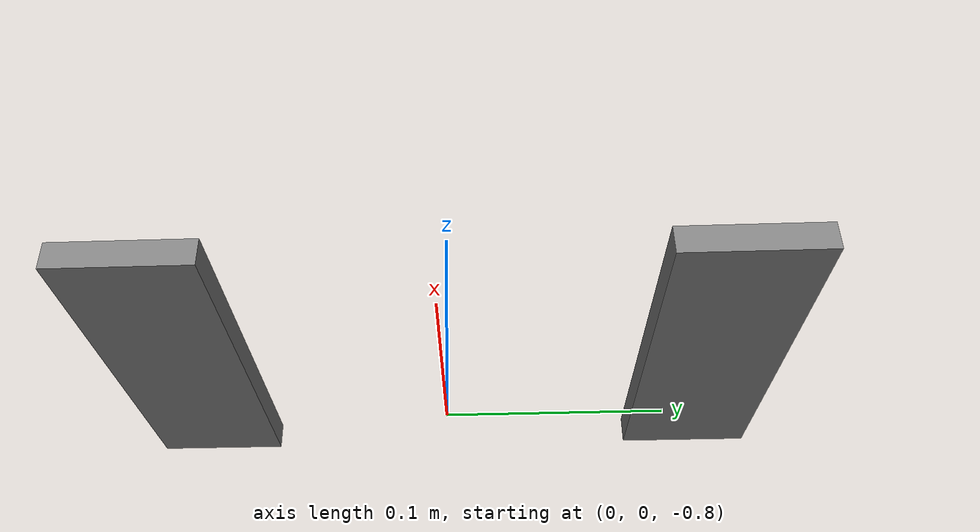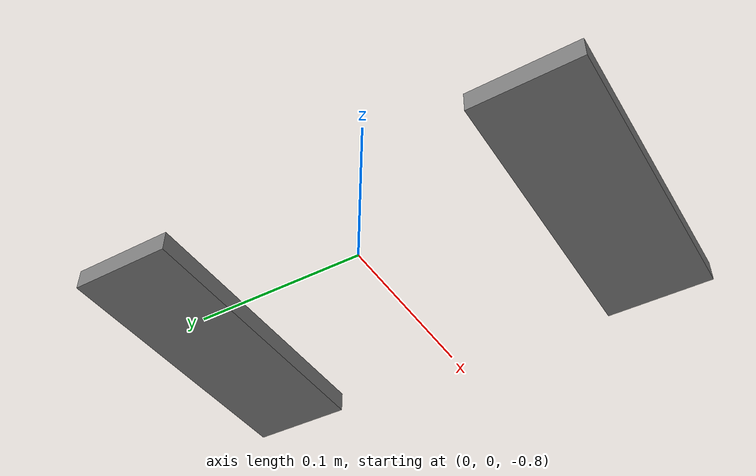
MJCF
<mujoco model="g1_23dof_omnisim">
  <compiler angle="radian"/>

  <option timestep="0.004"/>

  <worldbody>
    <geom name="ground" size="50 50 0.1" type="plane" conaffinity="2"/>
    <body name="pelvis">
      <inertial pos="0 0 -0.07605" quat="1 0 -0.000399148 0" mass="3.813" diaginertia="0.010549 0.0093089 0.0079184"/>
      <joint name="root_free" type="free"/>
      <body name="pelvis_contour_link">
        <inertial pos="0 0 0" mass="0.001" diaginertia="1e-07 1e-07 1e-07"/>
      </body>
      <body name="left_hip_pitch_link" pos="0 0.064452 -0.1027">
        <inertial pos="0.002741 0.047791 -0.02606" quat="0.954862 0.293964 0.0302556 0.030122" mass="1.35" diaginertia="0.00181517 0.00153422 0.00116212"/>
        <joint name="left_hip_pitch_joint" pos="0 0 0" axis="0 1 0" limited="true" range="-2.5307 2.8798" actuatorfrcrange="-88 88"/>
        <body name="left_hip_roll_link" pos="0 0.052 -0.030465" quat="0.996179 0 -0.0873386 0">
          <inertial pos="0.029812 -0.001045 -0.087934" quat="0.977808 -1.97119e-05 0.205576 -0.0403793" mass="1.52" diaginertia="0.00254986 0.00241169 0.00148755"/>
          <joint name="left_hip_roll_joint" pos="0 0 0" axis="1 0 0" limited="true" range="-0.5236 2.9671" actuatorfrcrange="-88 88"/>
          <body name="left_hip_yaw_link" pos="0.025001 0 -0.12412">
            <inertial pos="-0.057709 -0.010981 -0.15078" quat="0.600598 0.15832 0.223482 0.751181" mass="1.702" diaginertia="0.00776166 0.00717575 0.00160139"/>
            <joint name="left_hip_yaw_joint" pos="0 0 0" axis="0 0 1" limited="true" range="-2.7576 2.7576" actuatorfrcrange="-88 88"/>
            <body name="left_knee_link" pos="-0.078273 0.0021489 -0.17734" quat="0.996179 0 0.0873386 0">
              <inertial pos="0.005457 0.003964 -0.12074" quat="0.923418 -0.0327699 0.0158246 0.382067" mass="1.932" diaginertia="0.0113804 0.0112778 0.00146458"/>
              <joint name="left_knee_joint" pos="0 0 0" axis="0 1 0" limited="true" range="-0.087267 2.8798" actuatorfrcrange="-139 139"/>
              <body name="left_ankle_pitch_link" pos="0 -9.4445e-05 -0.30001">
                <inertial pos="-0.007269 0 0.011137" quat="0.603053 0.369225 0.369225 0.603053" mass="0.074" diaginertia="1.89e-05 1.40805e-05 6.9195e-06"/>
                <joint name="left_ankle_pitch_joint" pos="0 0 0" axis="0 1 0" limited="true" range="-0.87267 0.5236" actuatorfrcrange="-35 35"/>
                <body name="left_ankle_roll_link" pos="0 0 -0.017558">
                  <inertial pos="0.026505 0 -0.016425" quat="-0.000481092 0.728482 -0.000618967 0.685065" mass="0.608" diaginertia="0.00167218 0.0016161 0.000217621"/>
                  <joint name="left_ankle_roll_joint" pos="0 0 0" axis="1 0 0" limited="true" range="-0.2618 0.2618" actuatorfrcrange="-35 35"/>
                  <geom size="0.085 0.03 0.006" pos="0.035 0 -0.03" type="box" contype="2"/>
                </body>
              </body>
            </body>
          </body>
        </body>
      </body>
      <body name="right_hip_pitch_link" pos="0 -0.064452 -0.1027">
        <inertial pos="0.002741 -0.047791 -0.02606" quat="0.954862 -0.293964 0.0302556 -0.030122" mass="1.35" diaginertia="0.00181517 0.00153422 0.00116212"/>
        <joint name="right_hip_pitch_joint" pos="0 0 0" axis="0 1 0" limited="true" range="-2.5307 2.8798" actuatorfrcrange="-88 88"/>
        <body name="right_hip_roll_link" pos="0 -0.052 -0.030465" quat="0.996179 0 -0.0873386 0">
          <inertial pos="0.029812 0.001045 -0.087934" quat="0.977808 1.97119e-05 0.205576 0.0403793" mass="1.52" diaginertia="0.00254986 0.00241169 0.00148755"/>
          <joint name="right_hip_roll_joint" pos="0 0 0" axis="1 0 0" limited="true" range="-2.9671 0.5236" actuatorfrcrange="-88 88"/>
          <body name="right_hip_yaw_link" pos="0.025001 0 -0.12412">
            <inertial pos="-0.057709 0.010981 -0.15078" quat="0.751181 0.223482 0.15832 0.600598" mass="1.702" diaginertia="0.00776166 0.00717575 0.00160139"/>
            <joint name="right_hip_yaw_joint" pos="0 0 0" axis="0 0 1" limited="true" range="-2.7576 2.7576" actuatorfrcrange="-88 88"/>
            <body name="right_knee_link" pos="-0.078273 -0.0021489 -0.17734" quat="0.996179 0 0.0873386 0">
              <inertial pos="0.005457 -0.003964 -0.12074" quat="0.923439 0.0345276 0.0116333 -0.382012" mass="1.932" diaginertia="0.011374 0.0112843 0.00146452"/>
              <joint name="right_knee_joint" pos="0 0 0" axis="0 1 0" limited="true" range="-0.087267 2.8798" actuatorfrcrange="-139 139"/>
              <body name="right_ankle_pitch_link" pos="0 9.4445e-05 -0.30001">
                <inertial pos="-0.007269 0 0.011137" quat="0.603053 0.369225 0.369225 0.603053" mass="0.074" diaginertia="1.89e-05 1.40805e-05 6.9195e-06"/>
                <joint name="right_ankle_pitch_joint" pos="0 0 0" axis="0 1 0" limited="true" range="-0.87267 0.5236" actuatorfrcrange="-35 35"/>
                <body name="right_ankle_roll_link" pos="0 0 -0.017558">
                  <inertial pos="0.026505 0 -0.016425" quat="0.000481092 0.728482 0.000618967 0.685065" mass="0.608" diaginertia="0.00167218 0.0016161 0.000217621"/>
                  <joint name="right_ankle_roll_joint" pos="0 0 0" axis="1 0 0" limited="true" range="-0.2618 0.2618" actuatorfrcrange="-35 35"/>
                  <geom size="0.085 0.03 0.006" pos="0.035 0 -0.03" type="box" contype="2"/>
                </body>
              </body>
            </body>
          </body>
        </body>
      </body>
      <body name="torso_link" pos="-0.0039635 0 0.054">
        <inertial pos="0.002601 0.000257 0.153719" quat="0.999683 0.00171655 0.0248299 -0.00373138" mass="8.562" diaginertia="0.065762 0.0535348 0.0307215"/>
        <joint name="waist_yaw_joint" pos="0 0 0" axis="0 0 1" limited="true" range="-2.618 2.618" actuatorfrcrange="-88 88"/>
        <body name="waist_yaw_fixed_link" pos="0.0039635 0 -0.054">
          <inertial pos="0.003964 0 0.018769" quat="-0.0178291 0.628464 0.0282471 0.777121" mass="0.244" diaginertia="0.000158561 0.000124229 9.67669e-05"/>
        </body>
        <body name="logo_link" pos="0.0039635 0 -0.054">
          <inertial pos="0 0 0" mass="0.001" diaginertia="1e-07 1e-07 1e-07"/>
        </body>
        <body name="head_link" pos="0.0039635 0 -0.054">
          <inertial pos="0.005267 0.000299 0.449869" quat="0.698214 0.0103452 0.0112083 0.715727" mass="1.036" diaginertia="0.00418528 0.00408711 0.00180579"/>
        </body>
        <body name="waist_support_link" pos="0.0039635 0 -0.054">
          <inertial pos="0 0 0" mass="0.001" diaginertia="1e-07 1e-07 1e-07"/>
        </body>
        <body name="imu_in_torso" pos="-0.03959 -0.00224 0.13792"/>
        <body name="d435_link" pos="0.0576235 0.01753 0.41987" quat="0.91496 0 0.403545 0"/>
        <body name="mid360_link" pos="0.0002835 3e-05 0.40618" quat="0.999799 0 0.0200699 0"/>
        <body name="left_shoulder_pitch_link" pos="0.0039563 0.10022 0.23778" quat="0.990264 0.139201 1.38722e-05 -9.86868e-05">
          <inertial pos="0 0.035892 -0.011628" quat="0.654152 0.0130458 -0.326267 0.68225" mass="0.718" diaginertia="0.000465864 0.000432842 0.000406394"/>
          <joint name="left_shoulder_pitch_joint" pos="0 0 0" axis="0 1 0" limited="true" range="-3.0892 2.6704" actuatorfrcrange="-25 25"/>
          <body name="left_shoulder_roll_link" pos="0 0.038 -0.013831" quat="0.990268 -0.139172 0 0">
            <inertial pos="-0.000227 0.00727 -0.063243" quat="0.701256 -0.0196223 -0.00710317 0.712604" mass="0.643" diaginertia="0.000691311 0.000618011 0.000388977"/>
            <joint name="left_shoulder_roll_joint" pos="0 0 0" axis="1 0 0" limited="true" range="-1.5882 2.2515" actuatorfrcrange="-25 25"/>
            <body name="left_shoulder_yaw_link" pos="0 0.00624 -0.1032">
              <inertial pos="0.010773 -0.002949 -0.072009" quat="0.716879 -0.0964829 -0.0679942 0.687134" mass="0.734" diaginertia="0.00106187 0.00103217 0.000400661"/>
              <joint name="left_shoulder_yaw_joint" pos="0 0 0" axis="0 0 1" limited="true" range="-2.618 2.618" actuatorfrcrange="-25 25"/>
              <body name="left_elbow_link" pos="0.015783 0 -0.080518">
                <inertial pos="0.064956 0.004454 -0.010062" quat="0.541765 0.636132 0.388821 0.388129" mass="0.6" diaginertia="0.000443035 0.000421612 0.000259353"/>
                <joint name="left_elbow_joint" pos="0 0 0" axis="0 1 0" limited="true" range="-1.0472 2.0944" actuatorfrcrange="-25 25"/>
                <body name="left_wrist_roll_rubber_hand" pos="0.1 0.00188791 -0.01">
                  <inertial pos="0.107947 0.00163512 0.00202245" quat="0.494051 0.504265 0.48416 0.516933" mass="0.356929" diaginertia="0.00200292 0.0019426 0.000195232"/>
                  <joint name="left_wrist_roll_joint" pos="0 0 0" axis="1 0 0" limited="true" range="-1.97222 1.97222" actuatorfrcrange="-25 25"/>
                </body>
              </body>
            </body>
          </body>
        </body>
        <body name="right_shoulder_pitch_link" pos="0.0039563 -0.10021 0.23778" quat="0.990264 -0.139201 1.38722e-05 9.86868e-05">
          <inertial pos="0 -0.035892 -0.011628" quat="0.68225 -0.326267 0.0130458 0.654152" mass="0.718" diaginertia="0.000465864 0.000432842 0.000406394"/>
          <joint name="right_shoulder_pitch_joint" pos="0 0 0" axis="0 1 0" limited="true" range="-3.0892 2.6704" actuatorfrcrange="-25 25"/>
          <body name="right_shoulder_roll_link" pos="0 -0.038 -0.013831" quat="0.990268 0.139172 0 0">
            <inertial pos="-0.000227 -0.00727 -0.063243" quat="0.712604 -0.00710317 -0.0196223 0.701256" mass="0.643" diaginertia="0.000691311 0.000618011 0.000388977"/>
            <joint name="right_shoulder_roll_joint" pos="0 0 0" axis="1 0 0" limited="true" range="-2.2515 1.5882" actuatorfrcrange="-25 25"/>
            <body name="right_shoulder_yaw_link" pos="0 -0.00624 -0.1032">
              <inertial pos="0.010773 0.002949 -0.072009" quat="0.687134 -0.0679942 -0.0964829 0.716879" mass="0.734" diaginertia="0.00106187 0.00103217 0.000400661"/>
              <joint name="right_shoulder_yaw_joint" pos="0 0 0" axis="0 0 1" limited="true" range="-2.618 2.618" actuatorfrcrange="-25 25"/>
              <body name="right_elbow_link" pos="0.015783 0 -0.080518">
                <inertial pos="0.064956 -0.004454 -0.010062" quat="0.388129 0.388821 0.636132 0.541765" mass="0.6" diaginertia="0.000443035 0.000421612 0.000259353"/>
                <joint name="right_elbow_joint" pos="0 0 0" axis="0 1 0" limited="true" range="-1.0472 2.0944" actuatorfrcrange="-25 25"/>
                <body name="right_wrist_roll_rubber_hand" pos="0.1 -0.00188791 -0.01">
                  <inertial pos="0.107947 -0.00163512 0.00202245" quat="0.516933 0.48416 0.504265 0.494051" mass="0.356929" diaginertia="0.00200292 0.0019426 0.000195232"/>
                  <joint name="right_wrist_roll_joint" pos="0 0 0" axis="1 0 0" limited="true" range="-1.97222 1.97222" actuatorfrcrange="-25 25"/>
                </body>
              </body>
            </body>
          </body>
        </body>
      </body>
      <body name="imu_in_pelvis" pos="0.04525 0 -0.08339"/>
    </body>
  </worldbody>

  <actuator>
    <general name="left_hip_pitch_joint_pos" joint="left_hip_pitch_joint" ctrllimited="false" forcelimited="false" biastype="affine" gainprm="100" biasprm="0 -100"/>
    <general name="left_hip_pitch_joint_vel" joint="left_hip_pitch_joint" ctrllimited="false" forcelimited="false" biastype="affine" gainprm="5" biasprm="0 0 -5"/>
    <general name="left_hip_roll_joint_pos" joint="left_hip_roll_joint" ctrllimited="false" forcelimited="false" biastype="affine" gainprm="100" biasprm="0 -100"/>
    <general name="left_hip_roll_joint_vel" joint="left_hip_roll_joint" ctrllimited="false" forcelimited="false" biastype="affine" gainprm="5" biasprm="0 0 -5"/>
    <general name="left_hip_yaw_joint_pos" joint="left_hip_yaw_joint" ctrllimited="false" forcelimited="false" biastype="affine" gainprm="100" biasprm="0 -100"/>
    <general name="left_hip_yaw_joint_vel" joint="left_hip_yaw_joint" ctrllimited="false" forcelimited="false" biastype="affine" gainprm="5" biasprm="0 0 -5"/>
    <general name="left_knee_joint_pos" joint="left_knee_joint" ctrllimited="false" forcelimited="false" biastype="affine" gainprm="100" biasprm="0 -100"/>
    <general name="left_knee_joint_vel" joint="left_knee_joint" ctrllimited="false" forcelimited="false" biastype="affine" gainprm="5" biasprm="0 0 -5"/>
    <general name="left_ankle_pitch_joint_pos" joint="left_ankle_pitch_joint" ctrllimited="false" forcelimited="false" biastype="affine" gainprm="100" biasprm="0 -100"/>
    <general name="left_ankle_pitch_joint_vel" joint="left_ankle_pitch_joint" ctrllimited="false" forcelimited="false" biastype="affine" gainprm="5" biasprm="0 0 -5"/>
    <general name="left_ankle_roll_joint_pos" joint="left_ankle_roll_joint" ctrllimited="false" forcelimited="false" biastype="affine" gainprm="100" biasprm="0 -100"/>
    <general name="left_ankle_roll_joint_vel" joint="left_ankle_roll_joint" ctrllimited="false" forcelimited="false" biastype="affine" gainprm="5" biasprm="0 0 -5"/>
    <general name="right_hip_pitch_joint_pos" joint="right_hip_pitch_joint" ctrllimited="false" forcelimited="false" biastype="affine" gainprm="100" biasprm="0 -100"/>
    <general name="right_hip_pitch_joint_vel" joint="right_hip_pitch_joint" ctrllimited="false" forcelimited="false" biastype="affine" gainprm="5" biasprm="0 0 -5"/>
    <general name="right_hip_roll_joint_pos" joint="right_hip_roll_joint" ctrllimited="false" forcelimited="false" biastype="affine" gainprm="100" biasprm="0 -100"/>
    <general name="right_hip_roll_joint_vel" joint="right_hip_roll_joint" ctrllimited="false" forcelimited="false" biastype="affine" gainprm="5" biasprm="0 0 -5"/>
    <general name="right_hip_yaw_joint_pos" joint="right_hip_yaw_joint" ctrllimited="false" forcelimited="false" biastype="affine" gainprm="100" biasprm="0 -100"/>
    <general name="right_hip_yaw_joint_vel" joint="right_hip_yaw_joint" ctrllimited="false" forcelimited="false" biastype="affine" gainprm="5" biasprm="0 0 -5"/>
    <general name="right_knee_joint_pos" joint="right_knee_joint" ctrllimited="false" forcelimited="false" biastype="affine" gainprm="100" biasprm="0 -100"/>
    <general name="right_knee_joint_vel" joint="right_knee_joint" ctrllimited="false" forcelimited="false" biastype="affine" gainprm="5" biasprm="0 0 -5"/>
    <general name="right_ankle_pitch_joint_pos" joint="right_ankle_pitch_joint" ctrllimited="false" forcelimited="false" biastype="affine" gainprm="100" biasprm="0 -100"/>
    <general name="right_ankle_pitch_joint_vel" joint="right_ankle_pitch_joint" ctrllimited="false" forcelimited="false" biastype="affine" gainprm="5" biasprm="0 0 -5"/>
    <general name="right_ankle_roll_joint_pos" joint="right_ankle_roll_joint" ctrllimited="false" forcelimited="false" biastype="affine" gainprm="100" biasprm="0 -100"/>
    <general name="right_ankle_roll_joint_vel" joint="right_ankle_roll_joint" ctrllimited="false" forcelimited="false" biastype="affine" gainprm="5" biasprm="0 0 -5"/>
    <general name="waist_yaw_joint_pos" joint="waist_yaw_joint" ctrllimited="false" forcelimited="false" biastype="affine" gainprm="100" biasprm="0 -100"/>
    <general name="waist_yaw_joint_vel" joint="waist_yaw_joint" ctrllimited="false" forcelimited="false" biastype="affine" gainprm="5" biasprm="0 0 -5"/>
    <general name="left_shoulder_pitch_joint_pos" joint="left_shoulder_pitch_joint" ctrllimited="false" forcelimited="false" biastype="affine" gainprm="100" biasprm="0 -100"/>
    <general name="left_shoulder_pitch_joint_vel" joint="left_shoulder_pitch_joint" ctrllimited="false" forcelimited="false" biastype="affine" gainprm="5" biasprm="0 0 -5"/>
    <general name="left_shoulder_roll_joint_pos" joint="left_shoulder_roll_joint" ctrllimited="false" forcelimited="false" biastype="affine" gainprm="100" biasprm="0 -100"/>
    <general name="left_shoulder_roll_joint_vel" joint="left_shoulder_roll_joint" ctrllimited="false" forcelimited="false" biastype="affine" gainprm="5" biasprm="0 0 -5"/>
    <general name="left_shoulder_yaw_joint_pos" joint="left_shoulder_yaw_joint" ctrllimited="false" forcelimited="false" biastype="affine" gainprm="100" biasprm="0 -100"/>
    <general name="left_shoulder_yaw_joint_vel" joint="left_shoulder_yaw_joint" ctrllimited="false" forcelimited="false" biastype="affine" gainprm="5" biasprm="0 0 -5"/>
    <general name="left_elbow_joint_pos" joint="left_elbow_joint" ctrllimited="false" forcelimited="false" biastype="affine" gainprm="100" biasprm="0 -100"/>
    <general name="left_elbow_joint_vel" joint="left_elbow_joint" ctrllimited="false" forcelimited="false" biastype="affine" gainprm="5" biasprm="0 0 -5"/>
    <general name="left_wrist_roll_joint_pos" joint="left_wrist_roll_joint" ctrllimited="false" forcelimited="false" biastype="affine" gainprm="100" biasprm="0 -100"/>
    <general name="left_wrist_roll_joint_vel" joint="left_wrist_roll_joint" ctrllimited="false" forcelimited="false" biastype="affine" gainprm="5" biasprm="0 0 -5"/>
    <general name="right_shoulder_pitch_joint_pos" joint="right_shoulder_pitch_joint" ctrllimited="false" forcelimited="false" biastype="affine" gainprm="100" biasprm="0 -100"/>
    <general name="right_shoulder_pitch_joint_vel" joint="right_shoulder_pitch_joint" ctrllimited="false" forcelimited="false" biastype="affine" gainprm="5" biasprm="0 0 -5"/>
    <general name="right_shoulder_roll_joint_pos" joint="right_shoulder_roll_joint" ctrllimited="false" forcelimited="false" biastype="affine" gainprm="100" biasprm="0 -100"/>
    <general name="right_shoulder_roll_joint_vel" joint="right_shoulder_roll_joint" ctrllimited="false" forcelimited="false" biastype="affine" gainprm="5" biasprm="0 0 -5"/>
    <general name="right_shoulder_yaw_joint_pos" joint="right_shoulder_yaw_joint" ctrllimited="false" forcelimited="false" biastype="affine" gainprm="100" biasprm="0 -100"/>
    <general name="right_shoulder_yaw_joint_vel" joint="right_shoulder_yaw_joint" ctrllimited="false" forcelimited="false" biastype="affine" gainprm="5" biasprm="0 0 -5"/>
    <general name="right_elbow_joint_pos" joint="right_elbow_joint" ctrllimited="false" forcelimited="false" biastype="affine" gainprm="100" biasprm="0 -100"/>
    <general name="right_elbow_joint_vel" joint="right_elbow_joint" ctrllimited="false" forcelimited="false" biastype="affine" gainprm="5" biasprm="0 0 -5"/>
    <general name="right_wrist_roll_joint_pos" joint="right_wrist_roll_joint" ctrllimited="false" forcelimited="false" biastype="affine" gainprm="100" biasprm="0 -100"/>
    <general name="right_wrist_roll_joint_vel" joint="right_wrist_roll_joint" ctrllimited="false" forcelimited="false" biastype="affine" gainprm="5" biasprm="0 0 -5"/>
  </actuator>
</mujoco>
